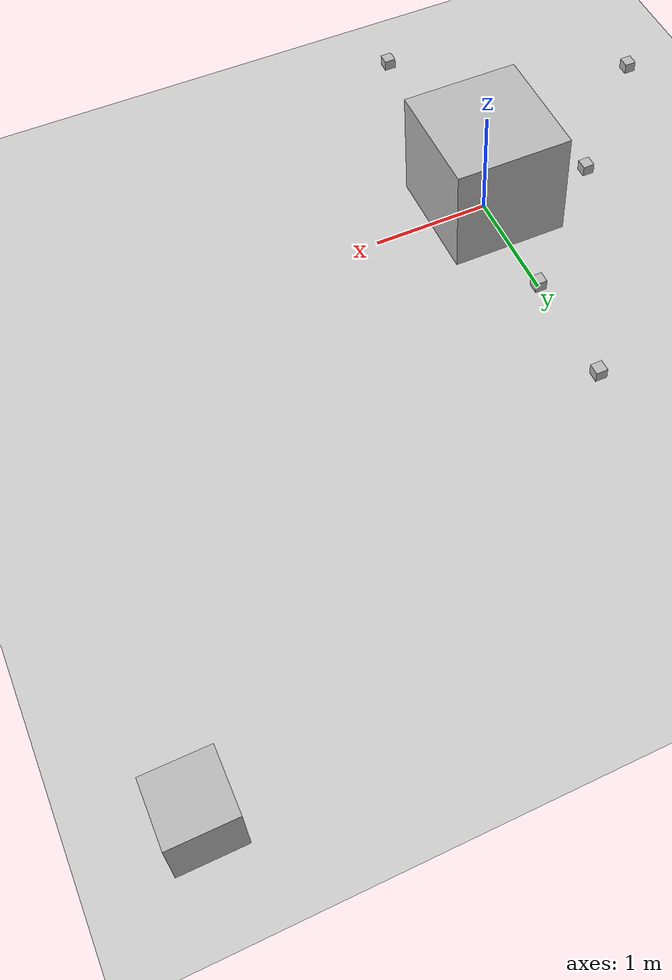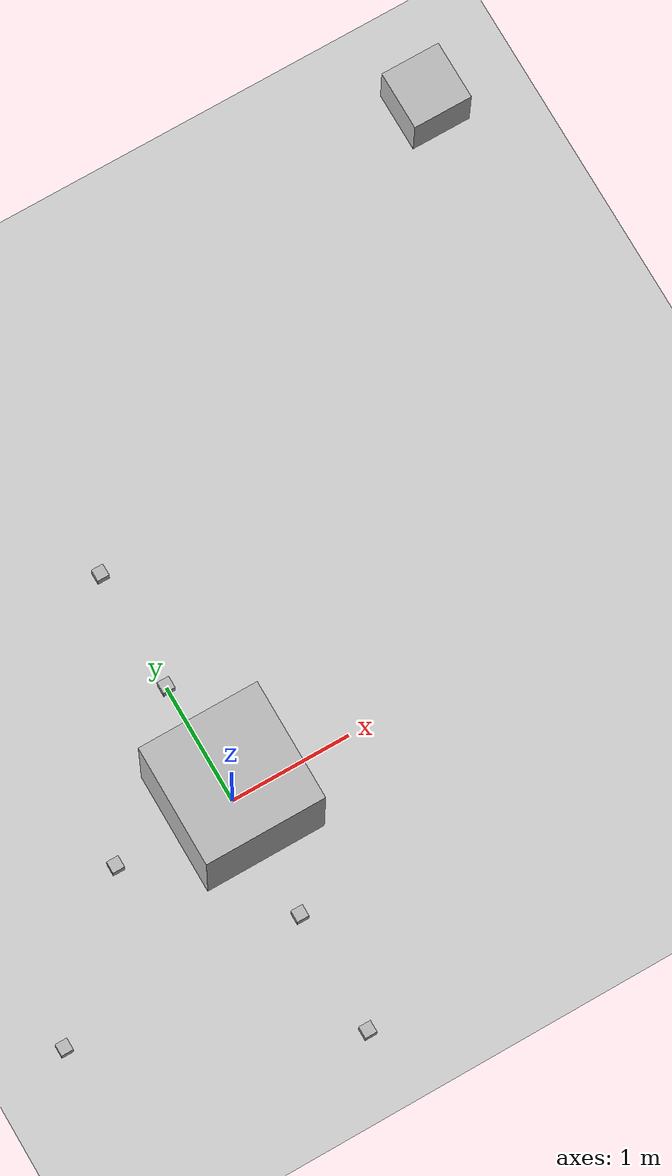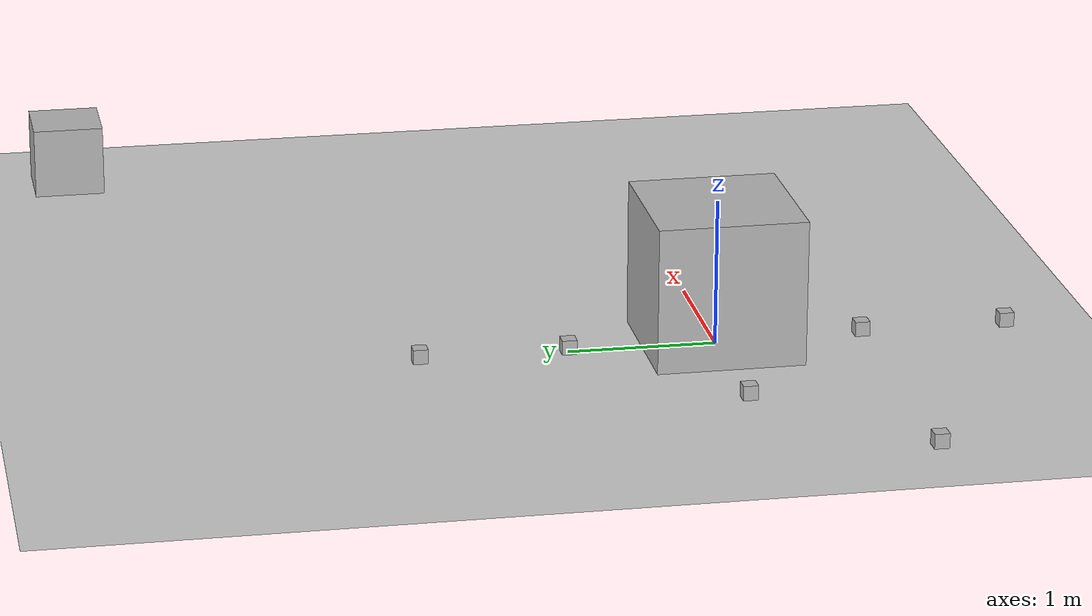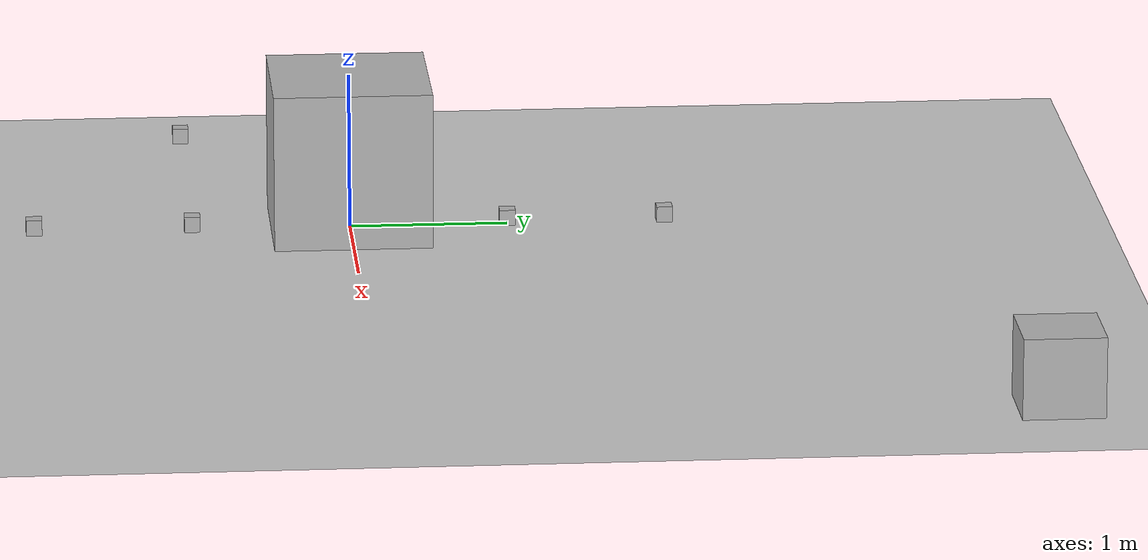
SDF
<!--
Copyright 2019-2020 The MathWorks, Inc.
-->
<sdf version="1.4">
 <world name="default">
  <include><uri>model://ground_plane</uri></include>
  <include><uri>model://sun</uri></include>
  <model name="magnetometerModel">
   <pose>4 4 0.25 0 0 0</pose>
   <static>true</static>
   <link name="link">
    <collision name="collision"><geometry><box><size>0.5 0.5 0.5</size></box></geometry></collision>
    <visual name="visual"><geometry><box><size>0.5 0.5 0.5</size></box></geometry></visual>
    <sensor name="magnetometer" type="magnetometer"><always_on>1</always_on><update_rate>1</update_rate></sensor>
   </link>
  </model>
  <model name="unit_box">
   <pose>0.0 0.0 0.5 0.0 0.0 0.0</pose>
   <link name="link">
    <collision name="collision"><geometry><box><size>1 1 1</size></box></geometry></collision>
    <visual name="visual"><geometry><box><size>1 1 1</size></box></geometry></visual>
   </link>
   <joint type="revolute" name="joint">
    <child>link</child>
    <parent>link</parent>
    <axis><xyz>0 0 0</xyz></axis>
   </joint>
  </model>
  <model name="camera0">
   <pose>0 1 0.05 0 0 0</pose>
   <link name="link">
    <inertial>
     <mass>0.1</mass>
     <inertia><ixx>0.000166667</ixx><iyy>0.000166667</iyy><izz>0.000166667</izz></inertia>
    </inertial>
    <collision name="collision"><geometry><box><size>0.1 0.1 0.1</size></box></geometry></collision>
    <visual name="visual"><geometry><box><size>0.1 0.1 0.1</size></box></geometry></visual>
    <sensor name="camera" type="camera">
     <camera>
      <horizontal_fov>1.047</horizontal_fov>
      <image><width>320</width><height>240</height></image>
      <clip><near>0.1</near><far>100</far></clip>
     </camera>
     <always_on>1</always_on>
     <update_rate>200</update_rate>
     <visualize>true</visualize>
    </sensor>
   </link>
  </model>
  <model name="camera1">
   <pose>0 2 0.05 0 0 0</pose>
   <link name="link">
    <inertial>
     <mass>0.1</mass>
     <inertia><ixx>0.000166667</ixx><iyy>0.000166667</iyy><izz>0.000166667</izz></inertia>
    </inertial>
    <collision name="collision"><geometry><box><size>0.1 0.1 0.1</size></box></geometry></collision>
    <visual name="visual"><geometry><box><size>0.1 0.1 0.1</size></box></geometry></visual>
    <sensor name="camera" type="camera">
     <camera>
      <horizontal_fov>1.047</horizontal_fov>
      <image><width>320</width><height>240</height></image>
      <clip><near>0.1</near><far>100</far></clip>
     </camera>
     <always_on>1</always_on>
     <update_rate>200</update_rate>
     <visualize>true</visualize>
    </sensor>
   </link>
  </model>
  <model name="depth_camera0">
   <link name="link">
    <pose>0 -1 0.05 0 0 0</pose>
    <inertial>
     <mass>0.1</mass>
     <inertia><ixx>0.000166667</ixx><iyy>0.000166667</iyy><izz>0.000166667</izz></inertia>
    </inertial>
    <collision name="collision"><geometry><box><size>0.1 0.1 0.1</size></box></geometry></collision>
    <visual name="visual"><geometry><box><size>0.1 0.1 0.1</size></box></geometry></visual>
    <sensor name="camera" type="depth">
     <camera>
      <horizontal_fov>1.047</horizontal_fov>
      <image><width>320</width><height>240</height></image>
      <clip><near>0.1</near><far>100</far></clip>
     </camera>
     <always_on>1</always_on>
     <update_rate>200</update_rate>
     <visualize>true</visualize>
    </sensor>
   </link>
  </model>
  <model name="depth_camera1">
   <link name="link">
    <pose>0 -2 0.05 0 0 0</pose>
    <inertial>
     <mass>0.1</mass>
     <inertia><ixx>0.000166667</ixx><iyy>0.000166667</iyy><izz>0.000166667</izz></inertia>
    </inertial>
    <collision name="collision"><geometry><box><size>0.1 0.1 0.1</size></box></geometry></collision>
    <visual name="visual"><geometry><box><size>0.1 0.1 0.1</size></box></geometry></visual>
    <sensor name="camera" type="depth">
     <camera>
      <horizontal_fov>1.047</horizontal_fov>
      <image><width>320</width><height>240</height></image>
      <clip><near>0.1</near><far>100</far></clip>
     </camera>
     <always_on>1</always_on>
     <update_rate>200</update_rate>
     <visualize>true</visualize>
    </sensor>
   </link>
  </model>
  <model name="imu0">
   <link name="link">
    <pose>-2 -1 0.05 0 0 0</pose>
    <inertial><mass>0.1</mass></inertial>
    <visual name="visual"><geometry><box><size>0.1 0.1 0.1</size></box></geometry></visual>
    <collision name="collision"><geometry><box><size>0.1 0.1 0.1</size></box></geometry></collision>
    <sensor name="imu" type="imu">
     <imu>
      <angular_velocity>
       <x>
        <noise type="gaussian">
         <mean>0.0</mean>
         <stddev>2e-4</stddev>
         <bias_mean>0.0000075</bias_mean>
         <bias_stddev>0.0000008</bias_stddev>
        </noise>
       </x>
       <y>
        <noise type="gaussian">
         <mean>0.0</mean>
         <stddev>2e-4</stddev>
         <bias_mean>0.0000075</bias_mean>
         <bias_stddev>0.0000008</bias_stddev>
        </noise>
       </y>
       <z>
        <noise type="gaussian">
         <mean>0.0</mean>
         <stddev>2e-4</stddev>
         <bias_mean>0.0000075</bias_mean>
         <bias_stddev>0.0000008</bias_stddev>
        </noise>
       </z>
      </angular_velocity>
      <linear_acceleration>
       <x>
        <noise type="gaussian">
         <mean>0.0</mean>
         <stddev>1.7e-2</stddev>
         <bias_mean>0.1</bias_mean>
         <bias_stddev>0.001</bias_stddev>
        </noise>
       </x>
       <y>
        <noise type="gaussian">
         <mean>0.0</mean>
         <stddev>1.7e-2</stddev>
         <bias_mean>0.1</bias_mean>
         <bias_stddev>0.001</bias_stddev>
        </noise>
       </y>
       <z>
        <noise type="gaussian">
         <mean>0.0</mean>
         <stddev>1.7e-2</stddev>
         <bias_mean>0.1</bias_mean>
         <bias_stddev>0.001</bias_stddev>
        </noise>
       </z>
      </linear_acceleration>
     </imu>
     <always_on>1</always_on>
     <update_rate>200</update_rate>
    </sensor>
   </link>
  </model>
  <model name="imu1">
   <link name="link">
    <pose>-1 0 0.05 0 0 0</pose>
    <inertial><mass>0.1</mass></inertial>
    <visual name="visual"><geometry><box><size>0.1 0.1 0.1</size></box></geometry></visual>
    <collision name="collision"><geometry><box><size>0.1 0.1 0.1</size></box></geometry></collision>
    <sensor name="imu" type="imu">
     <imu>
      <angular_velocity>
       <x>
        <noise type="gaussian">
         <mean>0.0</mean>
         <stddev>2e-4</stddev>
         <bias_mean>0.0000075</bias_mean>
         <bias_stddev>0.0000008</bias_stddev>
        </noise>
       </x>
       <y>
        <noise type="gaussian">
         <mean>0.0</mean>
         <stddev>2e-4</stddev>
         <bias_mean>0.0000075</bias_mean>
         <bias_stddev>0.0000008</bias_stddev>
        </noise>
       </y>
       <z>
        <noise type="gaussian">
         <mean>0.0</mean>
         <stddev>2e-4</stddev>
         <bias_mean>0.0000075</bias_mean>
         <bias_stddev>0.0000008</bias_stddev>
        </noise>
       </z>
      </angular_velocity>
      <linear_acceleration>
       <x>
        <noise type="gaussian">
         <mean>0.0</mean>
         <stddev>1.7e-2</stddev>
         <bias_mean>0.1</bias_mean>
         <bias_stddev>0.001</bias_stddev>
        </noise>
       </x>
       <y>
        <noise type="gaussian">
         <mean>0.0</mean>
         <stddev>1.7e-2</stddev>
         <bias_mean>0.1</bias_mean>
         <bias_stddev>0.001</bias_stddev>
        </noise>
       </y>
       <z>
        <noise type="gaussian">
         <mean>0.0</mean>
         <stddev>1.7e-2</stddev>
         <bias_mean>0.1</bias_mean>
         <bias_stddev>0.001</bias_stddev>
        </noise>
       </z>
      </linear_acceleration>
     </imu>
     <always_on>1</always_on>
     <update_rate>200</update_rate>
    </sensor>
   </link>
  </model>
  <plugin name="GazeboPlugin" filename="lib/libGazeboCoSimPlugin.so"><portNumber>14581</portNumber></plugin>
  <plugin name="GazeboPlugin" filename="lib/libcustomMessagePluginTest.so"/>
 </world>
</sdf>
